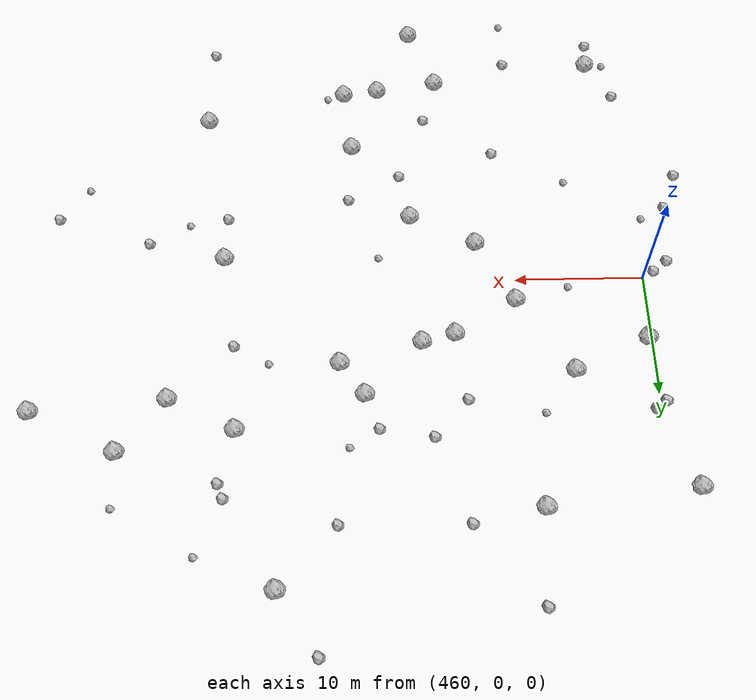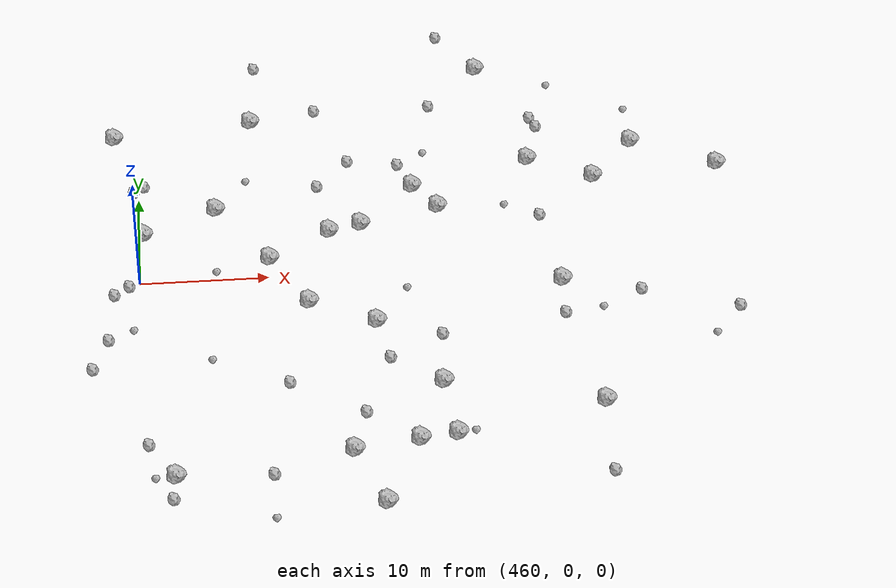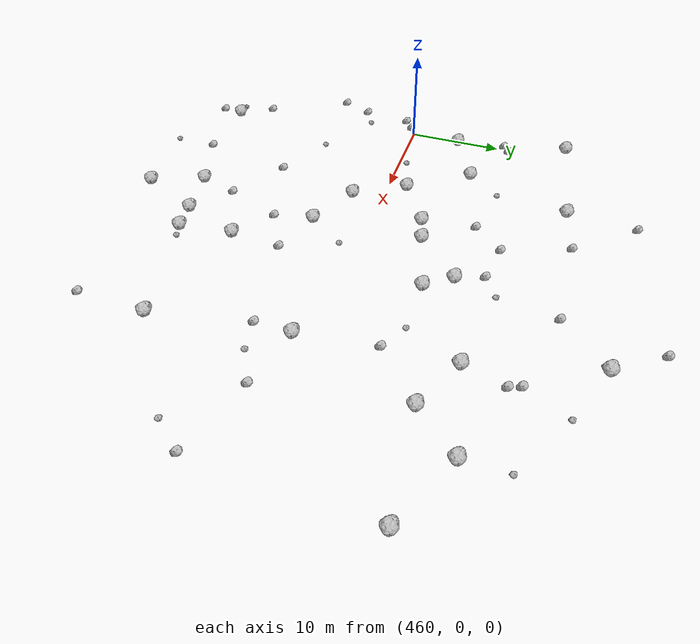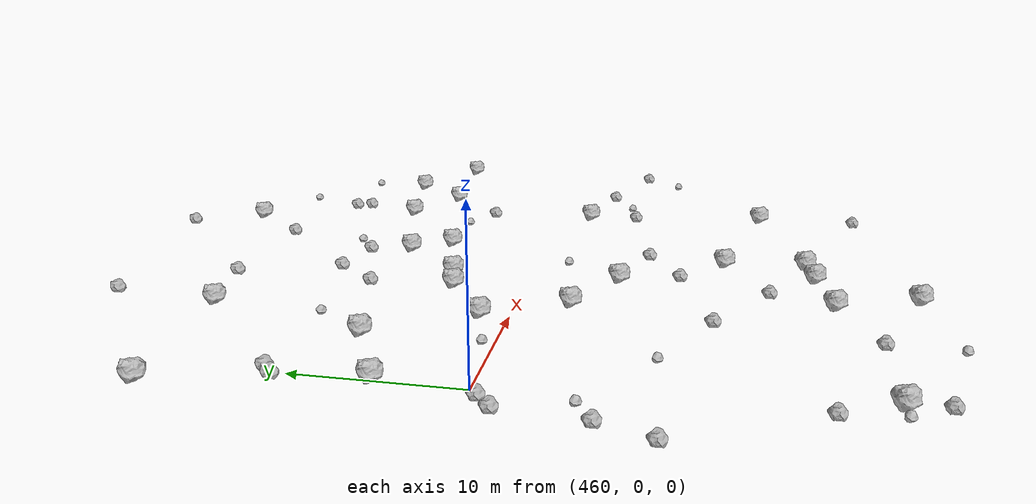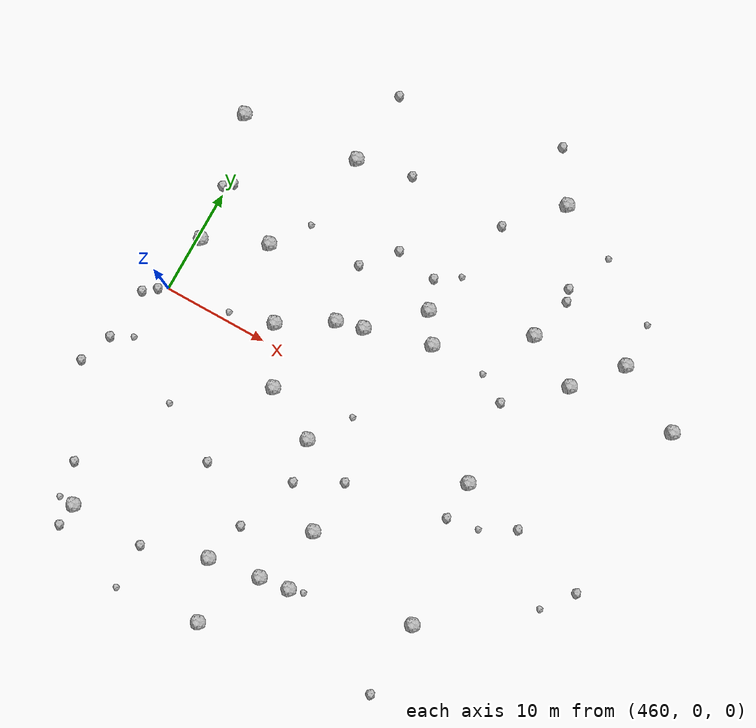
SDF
<sdf version="1.6">
 <world name="default">
  <include><uri>model://sun</uri></include>
  <model name="rock1_12_3">
   <include><uri>model://rock1</uri><pose>491.44679269513915 12.579677481341015 0.5 0 0 0</pose></include>
  </model>
  <model name="rock1_12_4">
   <include><uri>model://rock1</uri><pose>496.5093911087795 10.020875581328731 0.5 0 0 0</pose></include>
  </model>
  <model name="rock1_12_5">
   <include><uri>model://rock1</uri><pose>483.2073910281699 -18.458064012037983 0.5 0 0 0</pose></include>
  </model>
  <model name="rock1_12_6">
   <include><uri>model://rock1</uri><pose>472.97671015322743 -3.2949262813366147 0.5 0 0 0</pose></include>
  </model>
  <model name="rock1_12_7">
   <include><uri>model://rock1</uri><pose>506.6718662869788 10.878483149397816 0.5 0 0 0</pose></include>
  </model>
  <model name="rock1_12_8">
   <include><uri>model://rock1</uri><pose>466.0957998393806 8.093082641664132 0.5 0 0 0</pose></include>
  </model>
  <model name="rock1_12_9">
   <include><uri>model://rock1</uri><pose>470.1453754690549 1.9301721870704682 0.5 0 0 0</pose></include>
  </model>
  <model name="rock1_12_10">
   <include><uri>model://rock1</uri><pose>482.60199965383913 -12.887771151621905 0.5 0 0 0</pose></include>
  </model>
  <model name="rock1_12_11">
   <include><uri>model://rock1</uri><pose>460.3491245058319 5.4236430795422095 0.5 0 0 0</pose></include>
  </model>
  <model name="rock1_12_12">
   <include><uri>model://rock1</uri><pose>480.40301161024433 -18.832055906082427 0.5 0 0 0</pose></include>
  </model>
  <model name="rock1_12_13">
   <include><uri>model://rock1</uri><pose>492.70935220854363 -2.197286655546012 0.5 0 0 0</pose></include>
  </model>
  <model name="rock1_12_14">
   <include><uri>model://rock1</uri><pose>469.22687392220155 18.928952980880844 0.5 0 0 0</pose></include>
  </model>
  <model name="rock1_12_15">
   <include><uri>model://rock1</uri><pose>488.2858483173584 24.65253887257539 0.5 0 0 0</pose></include>
  </model>
  <model name="rock1_12_16">
   <include><uri>model://rock1</uri><pose>462.4689590347814 -21.39614944198815 0.5 0 0 0</pose></include>
  </model>
  <model name="rock1_12_17">
   <include><uri>model://rock1</uri><pose>478.0432311368502 -5.889266173019735 0.5 0 0 0</pose></include>
  </model>
  <model name="rock1_12_18">
   <include><uri>model://rock1</uri><pose>500.07108584311595 14.21438587680585 0.5 0 0 0</pose></include>
  </model>
  <model name="rock1_12_19">
   <include><uri>model://rock1</uri><pose>477.55570216408057 -25.025790752302314 0.5 0 0 0</pose></include>
  </model>
  <model name="rock1_12_20">
   <include><uri>model://rock1</uri><pose>483.7370026870956 7.225466946134226 0.5 0 0 0</pose></include>
  </model>
  <model name="rock1_12_21">
   <include><uri>model://rock1</uri><pose>474.95646750515795 4.85120907086597 0.5 0 0 0</pose></include>
  </model>
  <model name="rock1_12_22">
   <include><uri>model://rock1</uri><pose>481.8898019177863 9.870167693330465 0.5 0 0 0</pose></include>
  </model>
  <model name="rock1_12_23">
   <include><uri>model://rock1</uri><pose>477.4898261625525 5.515220877543172 0.5 0 0 0</pose></include>
  </model>
  <model name="rock1_12_24">
   <include><uri>model://rock1</uri><pose>494.48208531006463 -15.80450538545172 0.5 0 0 0</pose></include>
  </model>
  <model name="rock1_12_25">
   <include><uri>model://rock1</uri><pose>458.0699275270441 17.585481837045123 0.5 0 0 0</pose></include>
  </model>
  <model name="rock1_12_26">
   <include><uri>model://rock1</uri><pose>475.5277342813487 -19.596115045439163 0.5 0 0 0</pose></include>
  </model>
  <model name="rock2_12_0">
   <include><uri>model://rock2</uri><pose>459.18493575856394 -0.4889090744967248 0.3 0 0 0</pose></include>
  </model>
  <model name="rock2_12_1">
   <include><uri>model://rock2</uri><pose>469.72479109060833 26.11455181031789 0.3 0 0 0</pose></include>
  </model>
  <model name="rock2_12_2">
   <include><uri>model://rock2</uri><pose>459.5881289766822 10.718303222644217 0.3 0 0 0</pose></include>
  </model>
  <model name="rock2_12_3">
   <include><uri>model://rock2</uri><pose>491.7118316282283 5.658135017561229 0.3 0 0 0</pose></include>
  </model>
  <model name="rock2_12_4">
   <include><uri>model://rock2</uri><pose>483.9491687045568 20.0253009056536 0.3 0 0 0</pose></include>
  </model>
  <model name="rock2_12_5">
   <include><uri>model://rock2</uri><pose>505.994263818141 -6.122272893257517 0.3 0 0 0</pose></include>
  </model>
  <model name="rock2_12_6">
   <include><uri>model://rock2</uri><pose>456.3780581521752 -9.632330030574408 0.3 0 0 0</pose></include>
  </model>
  <model name="rock2_12_7">
   <include><uri>model://rock2</uri><pose>460.50878365631945 -17.9673275761793 0.3 0 0 0</pose></include>
  </model>
  <model name="rock2_12_8">
   <include><uri>model://rock2</uri><pose>494.1853500156899 -23.037163525452666 0.3 0 0 0</pose></include>
  </model>
  <model name="rock2_12_9">
   <include><uri>model://rock2</uri><pose>471.0952116238843 -12.104013053853173 0.3 0 0 0</pose></include>
  </model>
  <model name="rock2_12_10">
   <include><uri>model://rock2</uri><pose>476.8369605181491 13.38047432400161 0.3 0 0 0</pose></include>
  </model>
  <model name="rock2_12_11">
   <include><uri>model://rock2</uri><pose>492.5267692323529 -5.919375107335021 0.3 0 0 0</pose></include>
  </model>
  <model name="rock2_12_12">
   <include><uri>model://rock2</uri><pose>457.5777156724379 -6.4913624809902934 0.3 0 0 0</pose></include>
  </model>
  <model name="rock2_12_13">
   <include><uri>model://rock2</uri><pose>476.5993826678612 -15.66688421871442 0.3 0 0 0</pose></include>
  </model>
  <model name="rock2_12_14">
   <include><uri>model://rock2</uri><pose>458.0294537264099 -1.4150938825445962 0.3 0 0 0</pose></include>
  </model>
  <model name="rock2_12_15">
   <include><uri>model://rock2</uri><pose>462.226466942941 -23.593398566866117 0.3 0 0 0</pose></include>
  </model>
  <model name="rock2_12_16">
   <include><uri>model://rock2</uri><pose>474.475853058264 20.080483613770767 0.3 0 0 0</pose></include>
  </model>
  <model name="rock2_12_17">
   <include><uri>model://rock2</uri><pose>485.2957208787351 29.288926842558034 0.3 0 0 0</pose></include>
  </model>
  <model name="rock2_12_18">
   <include><uri>model://rock2</uri><pose>474.24403718126644 10.402187699471789 0.3 0 0 0</pose></include>
  </model>
  <model name="rock2_12_19">
   <include><uri>model://rock2</uri><pose>492.1317979613358 17.92069304540378 0.3 0 0 0</pose></include>
  </model>
  <model name="rock2_12_20">
   <include><uri>model://rock2</uri><pose>492.5350779039958 16.77119590962598 0.3 0 0 0</pose></include>
  </model>
  <model name="rock2_12_21">
   <include><uri>model://rock2</uri><pose>480.8560263827379 12.673176095573275 0.3 0 0 0</pose></include>
  </model>
  <model name="rock2_12_22">
   <include><uri>model://rock2</uri><pose>498.66274221378063 -3.6860438159458937 0.3 0 0 0</pose></include>
  </model>
  <model name="rock2_12_23">
   <include><uri>model://rock2</uri><pose>482.9083289579729 -7.629895711653635 0.3 0 0 0</pose></include>
  </model>
  <model name="rock2_12_24">
   <include><uri>model://rock2</uri><pose>469.5340215881175 -21.609572357247036 0.3 0 0 0</pose></include>
  </model>
  <model name="rock2_12_25">
   <include><uri>model://rock2</uri><pose>478.7798463877146 -9.912855534018728 0.3 0 0 0</pose></include>
  </model>
  <model name="rock2_12_26">
   <include><uri>model://rock2</uri><pose>460.41899212647655 11.395662435067855 0.3 0 0 0</pose></include>
  </model>
  <model name="rock3_12_0">
   <include><uri>model://rock3</uri><pose>460.9517872313992 -21.401960099002864 0.2 0 0 0</pose></include>
  </model>
  <model name="rock3_12_1">
   <include><uri>model://rock3</uri><pose>468.5512496726293 11.515938164101613 0.2 0 0 0</pose></include>
  </model>
  <model name="rock3_12_2">
   <include><uri>model://rock3</uri><pose>483.02880068346263 14.071246505913123 0.2 0 0 0</pose></include>
  </model>
  <model name="rock3_12_3">
   <include><uri>model://rock3</uri><pose>465.38153783017424 -9.17638624944361 0.2 0 0 0</pose></include>
  </model>
  <model name="rock3_12_4">
   <include><uri>model://rock3</uri><pose>489.023283888533 7.146415697138899 0.2 0 0 0</pose></include>
  </model>
  <model name="rock3_12_5">
   <include><uri>model://rock3</uri><pose>484.50380020389724 -18.143656644895184 0.2 0 0 0</pose></include>
  </model>
  <model name="rock3_12_6">
   <include><uri>model://rock3</uri><pose>495.5057313235872 -5.440038688656152 0.2 0 0 0</pose></include>
  </model>
  <model name="rock3_12_7">
   <include><uri>model://rock3</uri><pose>493.9879897725471 22.1513876619681 0.2 0 0 0</pose></include>
  </model>
  <model name="rock3_12_8">
   <include><uri>model://rock3</uri><pose>465.95539501991806 0.7664865672341072 0.2 0 0 0</pose></include>
  </model>
  <model name="rock3_12_9">
   <include><uri>model://rock3</uri><pose>503.793676925101 -8.992321176982713 0.2 0 0 0</pose></include>
  </model>
  <model name="rock3_12_10">
   <include><uri>model://rock3</uri><pose>469.522018212427 -25.976814874518507 0.2 0 0 0</pose></include>
  </model>
  <model name="rock3_12_11">
   <include><uri>model://rock3</uri><pose>500.0099464253763 18.480476053068372 0.2 0 0 0</pose></include>
  </model>
  <model name="rock3_12_12">
   <include><uri>model://rock3</uri><pose>459.4978590112517 -5.4893377842404405 0.2 0 0 0</pose></include>
  </model>
  <model name="rock3_12_13">
   <include><uri>model://rock3</uri><pose>480.6005429356674 -2.131490167021962 0.2 0 0 0</pose></include>
  </model>
 </world>
</sdf>
